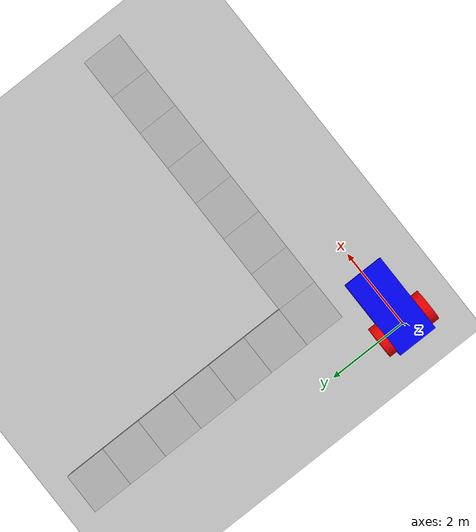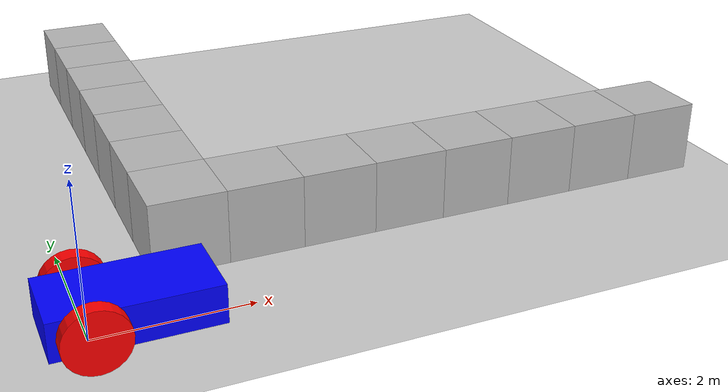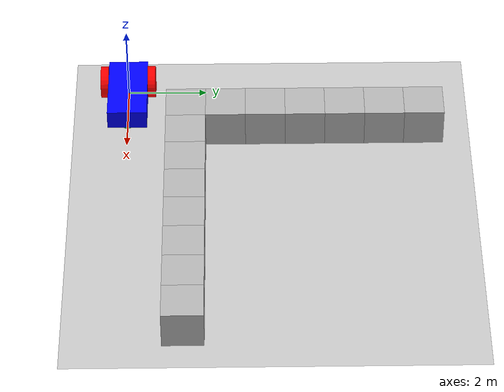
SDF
<?xml version="1.0" ?>
<sdf version="1.8">
    <world name="car_world">
        <physics name="1ms" type="ignored">
            <max_step_size>0.001</max_step_size>
            <real_time_factor>1.0</real_time_factor>
        </physics>
        <plugin
            filename="gz-sim-physics-system"
            name="gz::sim::systems::Physics">
        </plugin>
        <plugin
            filename="gz-sim-user-commands-system"
            name="gz::sim::systems::UserCommands">
        </plugin>
        <plugin
            filename="gz-sim-scene-broadcaster-system"
            name="gz::sim::systems::SceneBroadcaster">
        </plugin>

        <light type="directional" name="sun">
            <cast_shadows>true</cast_shadows>
            <pose>0 0 10 0 0 0</pose>
            <diffuse>0.8 0.8 0.8 1</diffuse>
            <specular>0.2 0.2 0.2 1</specular>
            <attenuation>
                <range>1000</range>
                <constant>0.9</constant>
                <linear>0.01</linear>
                <quadratic>0.001</quadratic>
            </attenuation>
            <direction>-0.5 0.1 -0.9</direction>
        </light>

        <model name="ground_plane">
            <static>true</static>
            <link name="link">
                <collision name="collision">
                <geometry>
                    <plane>
                    <normal>0 0 1</normal>
                    </plane>
                </geometry>
                </collision>
                <visual name="visual">
                <geometry>
                    <plane>
                    <normal>0 0 1</normal>
                    <size>100 100</size>
                    </plane>
                </geometry>
                <material>
                    <ambient>0.8 0.8 0.8 1</ambient>
                    <diffuse>0.8 0.8 0.8 1</diffuse>
                    <specular>0.8 0.8 0.8 1</specular>
                </material>
                </visual>
            </link>
        </model>

	<model name="box1">
	  <pose> 1.500000 1.500000  0.5 0 0 0</pose>
	  <link name="box\_link">
	    <visual name="visual">
	      <geometry>
		<box>
		  <size>1 1 1</size>
		</box>
	      </geometry>
	    </visual>
	    <collision name='collision'>
	      <geometry>
		<box>
		  <size>1 1 1</size>
		</box>
	      </geometry>
	    </collision>
	  </link>
	</model>

	<model name="box2">
	  <pose> 2.500000 1.500000  0.5 0 0 0</pose>
	  <link name="box\_link">
	    <visual name="visual">
	      <geometry>
		<box>
		  <size>1 1 1</size>
		</box>
	      </geometry>
	    </visual>
	    <collision name='collision'>
	      <geometry>
		<box>
		  <size>1 1 1</size>
		</box>
	      </geometry>
	    </collision>
	  </link>
	</model>

	<model name="box3">
	  <pose> 3.500000 1.500000  0.5 0 0 0</pose>
	  <link name="box\_link">
	    <visual name="visual">
	      <geometry>
		<box>
		  <size>1 1 1</size>
		</box>
	      </geometry>
	    </visual>
	    <collision name='collision'>
	      <geometry>
		<box>
		  <size>1 1 1</size>
		</box>
	      </geometry>
	    </collision>
	  </link>
	</model>

	<model name="box4">
	  <pose> 4.500000 1.500000  0.5 0 0 0</pose>
	  <link name="box\_link">
	    <visual name="visual">
	      <geometry>
		<box>
		  <size>1 1 1</size>
		</box>
	      </geometry>
	    </visual>
	    <collision name='collision'>
	      <geometry>
		<box>
		  <size>1 1 1</size>
		</box>
	      </geometry>
	    </collision>
	  </link>
	</model>

	<model name="box5">
	  <pose> 5.500000 1.500000  0.5 0 0 0</pose>
	  <link name="box\_link">
	    <visual name="visual">
	      <geometry>
		<box>
		  <size>1 1 1</size>
		</box>
	      </geometry>
	    </visual>
	    <collision name='collision'>
	      <geometry>
		<box>
		  <size>1 1 1</size>
		</box>
	      </geometry>
	    </collision>
	  </link>
	</model>

	<model name="box6">
	  <pose> 6.500000 1.500000  0.5 0 0 0</pose>
	  <link name="box\_link">
	    <visual name="visual">
	      <geometry>
		<box>
		  <size>1 1 1</size>
		</box>
	      </geometry>
	    </visual>
	    <collision name='collision'>
	      <geometry>
		<box>
		  <size>1 1 1</size>
		</box>
	      </geometry>
	    </collision>
	  </link>
	</model>

	<model name="box7">
	  <pose> 7.500000 1.500000  0.5 0 0 0</pose>
	  <link name="box\_link">
	    <visual name="visual">
	      <geometry>
		<box>
		  <size>1 1 1</size>
		</box>
	      </geometry>
	    </visual>
	    <collision name='collision'>
	      <geometry>
		<box>
		  <size>1 1 1</size>
		</box>
	      </geometry>
	    </collision>
	  </link>
	</model>

	<model name="box8">
	  <pose> 8.500000 1.500000  0.5 0 0 0</pose>
	  <link name="box\_link">
	    <visual name="visual">
	      <geometry>
		<box>
		  <size>1 1 1</size>
		</box>
	      </geometry>
	    </visual>
	    <collision name='collision'>
	      <geometry>
		<box>
		  <size>1 1 1</size>
		</box>
	      </geometry>
	    </collision>
	  </link>
	</model>

	<model name="box9">
	  <pose> 1.500000 2.500000  0.5 0 0 0</pose>
	  <link name="box\_link">
	    <visual name="visual">
	      <geometry>
		<box>
		  <size>1 1 1</size>
		</box>
	      </geometry>
	    </visual>
	    <collision name='collision'>
	      <geometry>
		<box>
		  <size>1 1 1</size>
		</box>
	      </geometry>
	    </collision>
	  </link>
	</model>

	<model name="box10">
	  <pose> 1.500000 3.500000  0.5 0 0 0</pose>
	  <link name="box\_link">
	    <visual name="visual">
	      <geometry>
		<box>
		  <size>1 1 1</size>
		</box>
	      </geometry>
	    </visual>
	    <collision name='collision'>
	      <geometry>
		<box>
		  <size>1 1 1</size>
		</box>
	      </geometry>
	    </collision>
	  </link>
	</model>

	<model name="box11">
	  <pose> 1.500000 4.500000  0.5 0 0 0</pose>
	  <link name="box\_link">
	    <visual name="visual">
	      <geometry>
		<box>
		  <size>1 1 1</size>
		</box>
	      </geometry>
	    </visual>
	    <collision name='collision'>
	      <geometry>
		<box>
		  <size>1 1 1</size>
		</box>
	      </geometry>
	    </collision>
	  </link>
	</model>

	<model name="box12">
	  <pose> 1.500000 5.500000  0.5 0 0 0</pose>
	  <link name="box\_link">
	    <visual name="visual">
	      <geometry>
		<box>
		  <size>1 1 1</size>
		</box>
	      </geometry>
	    </visual>
	    <collision name='collision'>
	      <geometry>
		<box>
		  <size>1 1 1</size>
		</box>
	      </geometry>
	    </collision>
	  </link>
	</model>

	<model name="box13">
	  <pose> 1.500000 6.500000  0.5 0 0 0</pose>
	  <link name="box\_link">
	    <visual name="visual">
	      <geometry>
		<box>
		  <size>1 1 1</size>
		</box>
	      </geometry>
	    </visual>
	    <collision name='collision'>
	      <geometry>
		<box>
		  <size>1 1 1</size>
		</box>
	      </geometry>
	    </collision>
	  </link>
	</model>

	<model name="box14">
	  <pose> 1.500000 7.500000  0.5 0 0 0</pose>
	  <link name="box\_link">
	    <visual name="visual">
	      <geometry>
		<box>
		  <size>1 1 1</size>
		</box>
	      </geometry>
	    </visual>
	    <collision name='collision'>
	      <geometry>
		<box>
		  <size>1 1 1</size>
		</box>
	      </geometry>
	    </collision>
	  </link>
	</model>

 <model name='vehicle_blue' canonical_link='chassis'>
	<plugin
    filename="gz-sim-diff-drive-system"
    name="gz::sim::systems::DiffDrive">
    <left_joint>left_wheel_joint</left_joint>
    <right_joint>right_wheel_joint</right_joint>
    <wheel_separation>1.2</wheel_separation>
    <wheel_radius>0.4</wheel_radius>
    <odom_publish_frequency>1</odom_publish_frequency>
    <topic>cmd_vel</topic>
</plugin>
            <pose relative_to='world'>0 0 0 0 0 0</pose>   <!--the pose is relative to the world by default-->

            <!--chassis-->
            <link name='chassis'>
                <pose relative_to='__model__'>0.5 0 0.4 0 0 0</pose>
                <inertial> <!--inertial properties of the link mass, inertia matix-->
                    <mass>1.14395</mass>
                    <inertia>
                        <ixx>0.095329</ixx>
                        <ixy>0</ixy>
                        <ixz>0</ixz>
                        <iyy>0.381317</iyy>
                        <iyz>0</iyz>
                        <izz>0.476646</izz>
                    </inertia>
                </inertial>
                <visual name='visual'>
                    <geometry>
                        <box>
                            <size>2.0 1.0 0.5</size>
                        </box>
                    </geometry>
                    <!--Color of the link-->
                    <material>
                        <ambient>0.0 0.0 1.0 1</ambient>
                        <diffuse>0.0 0.0 1.0 1</diffuse>
                        <specular>0.0 0.0 1.0 1</specular>
                    </material>
                </visual>
                <collision name='collision'>
                    <geometry>
                        <box>
                            <size>2.0 1.0 0.5</size>
                        </box>
                    </geometry>
                </collision>
            </link>

            <!--Left wheel-->
            <link name='left_wheel'>
                <pose relative_to="chassis">-0.5 0.6 0 -1.5707 0 0</pose> <!--angles are in radian-->
                <inertial>
                    <mass>1</mass>
                    <inertia>
                        <ixx>0.043333</ixx>
                        <ixy>0</ixy>
                        <ixz>0</ixz>
                        <iyy>0.043333</iyy>
                        <iyz>0</iyz>
                        <izz>0.08</izz>
                    </inertia>
                </inertial>
                <visual name='visual'>
                    <geometry>
                        <cylinder>
                            <radius>0.4</radius>
                            <length>0.2</length>
                        </cylinder>
                    </geometry>
                    <material>
                        <ambient>1.0 0.0 0.0 1</ambient>
                        <diffuse>1.0 0.0 0.0 1</diffuse>
                        <specular>1.0 0.0 0.0 1</specular>
                    </material>
                </visual>
                <collision name='collision'>
                    <geometry>
                        <cylinder>
                            <radius>0.4</radius>
                            <length>0.2</length>
                        </cylinder>
                    </geometry>
                </collision>
            </link>

            <!--The same as left wheel but with different position-->
            <link name='right_wheel'>
                <pose relative_to="chassis">-0.5 -0.6 0 -1.5707 0 0</pose> <!--angles are in radian-->
                <inertial>
                    <mass>1</mass>
                    <inertia>
                        <ixx>0.043333</ixx>
                        <ixy>0</ixy>
                        <ixz>0</ixz>
                        <iyy>0.043333</iyy>
                        <iyz>0</iyz>
                        <izz>0.08</izz>
                    </inertia>
                </inertial>
                <visual name='visual'>
                    <geometry>
                        <cylinder>
                            <radius>0.4</radius>
                            <length>0.2</length>
                        </cylinder>
                    </geometry>
                    <material>
                        <ambient>1.0 0.0 0.0 1</ambient>
                        <diffuse>1.0 0.0 0.0 1</diffuse>
                        <specular>1.0 0.0 0.0 1</specular>
                    </material>
                </visual>
                <collision name='collision'>
                    <geometry>
                        <cylinder>
                            <radius>0.4</radius>
                            <length>0.2</length>
                        </cylinder>
                    </geometry>
                </collision>
            </link>

            <!--arbitrary frame-->
            <frame name="caster_frame" attached_to='chassis'>
                <pose>0.8 0 -0.2 0 0 0</pose>
            </frame>

            <!--caster wheel-->
            <link name='caster'>
                <pose relative_to='caster_frame'/>
                <inertial>
                    <mass>1</mass>
                    <inertia>
                        <ixx>0.016</ixx>
                        <ixy>0</ixy>
                        <ixz>0</ixz>
                        <iyy>0.016</iyy>
                        <iyz>0</iyz>
                        <izz>0.016</izz>
                    </inertia>
                </inertial>
                <visual name='visual'>
                    <geometry>
                        <sphere>
                            <radius>0.2</radius>
                        </sphere>
                    </geometry>
                    <material>
                        <ambient>0.0 1 0.0 1</ambient>
                        <diffuse>0.0 1 0.0 1</diffuse>
                        <specular>0.0 1 0.0 1</specular>
                    </material>
                </visual>
                <collision name='collision'>
                    <geometry>
                        <sphere>
                            <radius>0.2</radius>
                        </sphere>
                    </geometry>
                </collision>
            </link>

            <!--left wheel joint-->
            <joint name='left_wheel_joint' type='revolute'>
                <pose relative_to='left_wheel'/>
                <parent>chassis</parent>
                <child>left_wheel</child>
                <axis>
                    <xyz expressed_in='__model__'>0 1 0</xyz> <!--can be descired to any frame or even arbitrary frames-->
                    <limit>
                        <lower>-1.79769e+308</lower>    <!--negative infinity-->
                        <upper>1.79769e+308</upper>     <!--positive infinity-->
                    </limit>
                </axis>
            </joint>

            <!--right wheel joint-->
            <joint name='right_wheel_joint' type='revolute'>
                <pose relative_to='right_wheel'/>
                <parent>chassis</parent>
                <child>right_wheel</child>
                <axis>
                    <xyz expressed_in='__model__'>0 1 0</xyz>
                    <limit>
                        <lower>-1.79769e+308</lower>    <!--negative infinity-->
                        <upper>1.79769e+308</upper>     <!--positive infinity-->
                    </limit>
                </axis>
            </joint>

            <!--caster wheel joint--> <!--pose defult value is the child-->
            <joint name='caster_wheel' type='ball'>
                <parent>chassis</parent>
                <child>caster</child>
            </joint>
        </model>
    </world>
</sdf>
